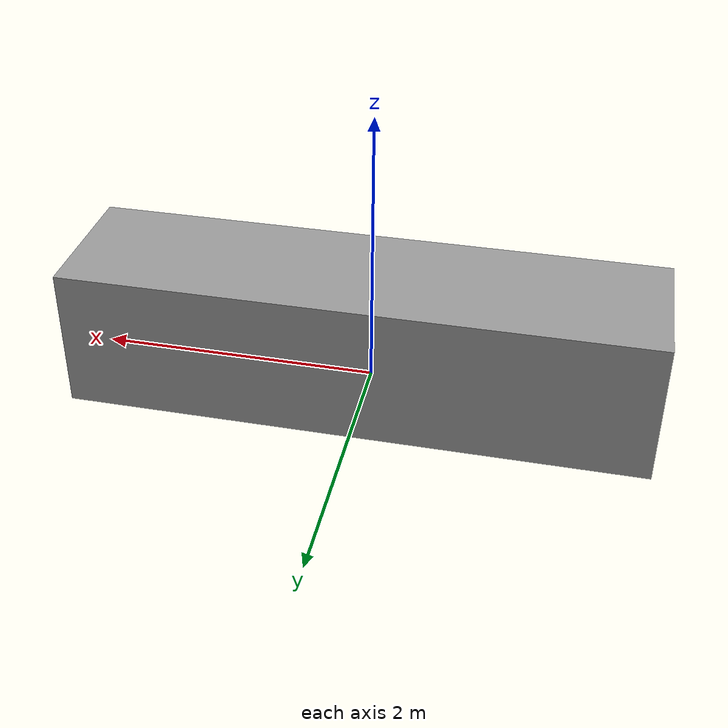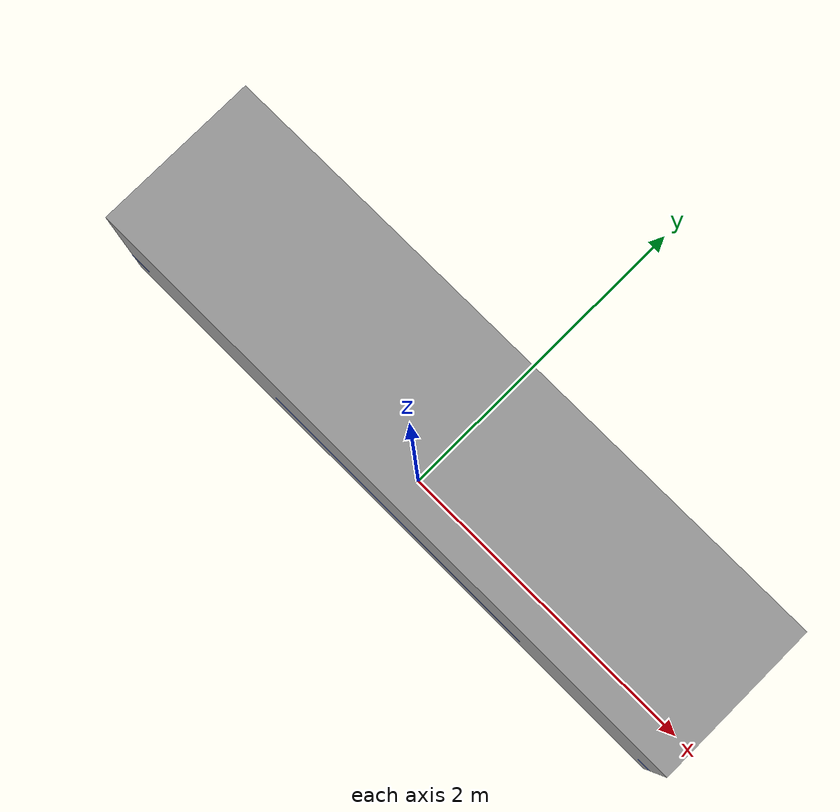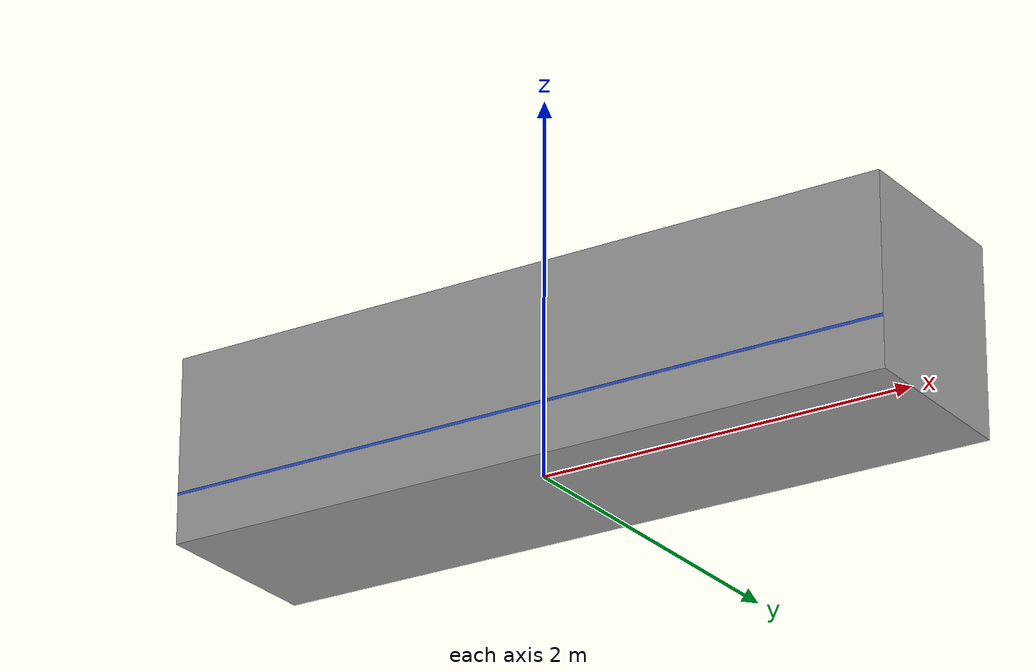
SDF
<?xml version='1.0'?>
<sdf version='1.6'>
  <model name='line_on_wall'>
    <link name='link_1'>
      <pose frame=''>0.000193 0.25075 0.5 0 -0 0</pose>
      <inertial>
        <mass>1</mass>
        <inertia>
          <ixx>0.166667</ixx>
          <ixy>0</ixy>
          <ixz>0</ixz>
          <iyy>0.166667</iyy>
          <iyz>0</iyz>
          <izz>0.166667</izz>
        </inertia>
        <pose frame=''>0 0 0 0 -0 0</pose>
      </inertial>
      <gravity>1</gravity>
      <self_collide>0</self_collide>
      <kinematic>0</kinematic>
      <visual name='visual'>
        <pose frame=''>0 0 0 0 -0 0</pose>
        <geometry>
          <box>
            <size>4 1 1</size>
          </box>
        </geometry>
        <material>
          <lighting>1</lighting>
          <script>
            <uri>file://media/materials/scripts/gazebo.material</uri>
            <name>Gazebo/Grey</name>
          </script>
          <ambient>0.3 0.3 0.3 1</ambient>
          <diffuse>0.7 0.7 0.7 1</diffuse>
          <specular>0.01 0.01 0.01 1</specular>
          <emissive>0 0 0 1</emissive>
          <shader type='vertex'>
            <normal_map>__default__</normal_map>
          </shader>
        </material>
        <cast_shadows>1</cast_shadows>
        <transparency>0</transparency>
      </visual>
      <collision name='collision'>
        <laser_retro>0</laser_retro>
        <max_contacts>10</max_contacts>
        <pose frame=''>0 0 0 0 -0 0</pose>
        <geometry>
          <box>
            <size>4 1 1</size>
          </box>
        </geometry>
        <surface>
          <friction>
            <ode>
              <mu>1</mu>
              <mu2>1</mu2>
              <fdir1>0 0 0</fdir1>
              <slip1>0</slip1>
              <slip2>0</slip2>
            </ode>
            <torsional>
              <coefficient>1</coefficient>
              <patch_radius>0</patch_radius>
              <surface_radius>0</surface_radius>
              <use_patch_radius>1</use_patch_radius>
              <ode>
                <slip>0</slip>
              </ode>
            </torsional>
          </friction>
          <bounce>
            <restitution_coefficient>0</restitution_coefficient>
            <threshold>1e+06</threshold>
          </bounce>
          <contact>
            <collide_without_contact>0</collide_without_contact>
            <collide_without_contact_bitmask>1</collide_without_contact_bitmask>
            <collide_bitmask>1</collide_bitmask>
            <ode>
              <soft_cfm>0</soft_cfm>
              <soft_erp>0.2</soft_erp>
              <kp>1e+13</kp>
              <kd>1</kd>
              <max_vel>0.01</max_vel>
              <min_depth>0</min_depth>
            </ode>
            <bullet>
              <split_impulse>1</split_impulse>
              <split_impulse_penetration_threshold>-0.01</split_impulse_penetration_threshold>
              <soft_cfm>0</soft_cfm>
              <soft_erp>0.2</soft_erp>
              <kp>1e+13</kp>
              <kd>1</kd>
            </bullet>
          </contact>
        </surface>
      </collision>
    </link>
    <model name='BlueLine4m'>
      <link name='link_0'>
        <pose frame=''>0 -0.4 0.001 0 -0 0</pose>
        <inertial>
          <mass>1</mass>
          <inertia>
            <ixx>0.166667</ixx>
            <ixy>0</ixy>
            <ixz>0</ixz>
            <iyy>0.166667</iyy>
            <iyz>0</iyz>
            <izz>0.166667</izz>
          </inertia>
          <pose frame=''>0 0 0 0 -0 0</pose>
        </inertial>
        <self_collide>0</self_collide>
        <kinematic>0</kinematic>
        <gravity>1</gravity>
        <visual name='visual'>
          <pose frame=''>0 0 0 0 -0 0</pose>
          <geometry>
            <box>
              <size>4 0.015 0.001</size>
            </box>
          </geometry>
          <material>
            <lighting>1</lighting>
            <script>
              <uri>file://media/materials/scripts/gazebo.material</uri>
              <name>Gazebo/Blue</name>
            </script>
            <ambient>0 0 1 0</ambient>
            <diffuse>0 0 1 0</diffuse>
            <specular>0.1 0.1 0.1 1</specular>
            <shader type='vertex'>
              <normal_map>__default__</normal_map>
            </shader>
            <emissive>0 0 0 1</emissive>
          </material>
          <cast_shadows>1</cast_shadows>
          <transparency>0</transparency>
        </visual>
        <collision name='collision'>
          <laser_retro>0</laser_retro>
          <max_contacts>10</max_contacts>
          <pose frame=''>0 0 0 0 -0 0</pose>
          <geometry>
            <box>
              <size>4 0.015 0.001</size>
            </box>
          </geometry>
          <surface>
            <friction>
              <ode>
                <mu>1</mu>
                <mu2>1</mu2>
                <fdir1>0 0 0</fdir1>
                <slip1>0</slip1>
                <slip2>0</slip2>
              </ode>
              <torsional>
                <coefficient>1</coefficient>
                <patch_radius>0</patch_radius>
                <surface_radius>0</surface_radius>
                <use_patch_radius>1</use_patch_radius>
                <ode>
                  <slip>0</slip>
                </ode>
              </torsional>
            </friction>
            <bounce>
              <restitution_coefficient>0</restitution_coefficient>
              <threshold>1e+06</threshold>
            </bounce>
            <contact>
              <collide_without_contact>1</collide_without_contact>
              <collide_without_contact_bitmask>1</collide_without_contact_bitmask>
              <collide_bitmask>1</collide_bitmask>
              <ode>
                <soft_cfm>0</soft_cfm>
                <soft_erp>0.2</soft_erp>
                <kp>1e+13</kp>
                <kd>1</kd>
                <max_vel>0.01</max_vel>
                <min_depth>0</min_depth>
              </ode>
              <bullet>
                <split_impulse>1</split_impulse>
                <split_impulse_penetration_threshold>-0.01</split_impulse_penetration_threshold>
                <soft_cfm>0</soft_cfm>
                <soft_erp>0.2</soft_erp>
                <kp>1e+13</kp>
                <kd>1</kd>
              </bullet>
            </contact>
          </surface>
        </collision>
      </link>
      <static>1</static>
      <allow_auto_disable>0</allow_auto_disable>
      <pose frame=''>-0.000194 -0.25075 -0.132981 -1.5708 0 0</pose>
    </model>
    <static>1</static>
    <allow_auto_disable>0</allow_auto_disable>
  </model>
</sdf>
